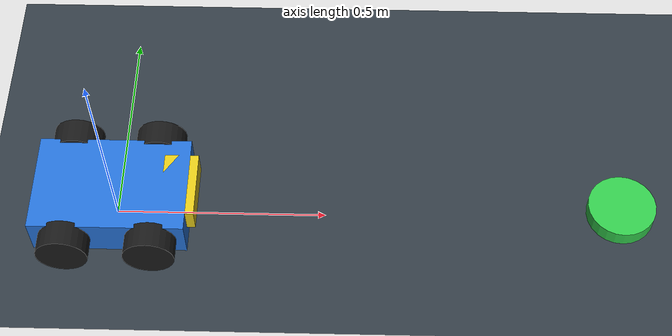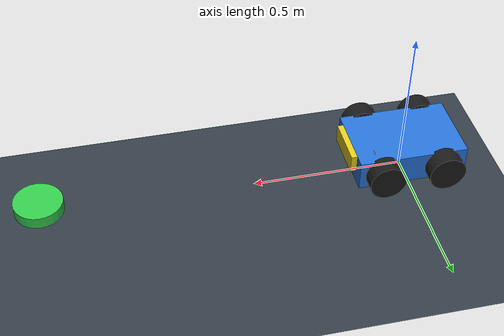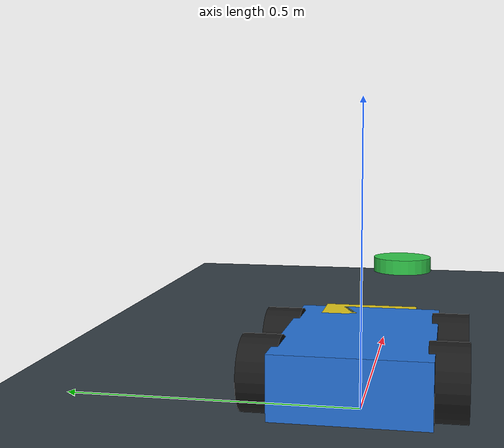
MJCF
<mujoco model="diff_car">
  <compiler angle="radian" coordinate="local" inertiafromgeom="true"/>
  <option timestep="0.002" gravity="0 0 -9.81"/>

  <visual>
    <global offwidth="1280" offheight="720"/>
  </visual>

  <default>
    <joint damping="2" armature="0.01"/>
    <geom friction="1 0.5 0.1"/>
  </default>

  <asset>
    <texture type="skybox" builtin="gradient" rgb1="0.4 0.6 0.8" rgb2="0 0 0" width="256" height="256"/>
    <texture name="texplane" type="2d" builtin="checker" rgb1=".25 .3 .35" rgb2=".15 .18 .2" width="256" height="256"/>
    <material name="matplane" reflectance="0.2" texture="texplane" texrepeat="8 8"/>
  </asset>

  <worldbody>
    <light pos="0 0 3" dir="0 0 -1"/>
    <geom name="floor" type="plane" size="3 3 0.05" material="matplane"/>

    <!-- Goal marker -->
    <body name="goal" pos="1.2 0 0.05">
      <geom type="cylinder" size="0.08 0.02" rgba="0.2 0.8 0.3 1" contype="0" conaffinity="0"/>
    </body>

    <!-- Planar base: x, y, yaw (position-actuated for simple demos) -->
    <body name="chassis" pos="0 0 0.08">
      <joint name="root_x" type="slide" axis="1 0 0" range="-4 4"/>
      <joint name="root_y" type="slide" axis="0 1 0" range="-4 4"/>
            <joint name="root_yaw" type="hinge" axis="0 0 1" range="-6.28 6.28"/>
      <geom type="box" size="0.18 0.12 0.05" rgba="0.15 0.45 0.85 1"/>
      <geom type="box" size="0.04 0.08 0.03" pos="0.16 0 0.02" rgba="0.9 0.8 0.1 1"/>
      <!-- Visual wheels -->
      <geom type="cylinder" size="0.06 0.03" pos="0.1 0.14 0" quat="0.707 0.707 0 0" rgba="0.1 0.1 0.1 1" contype="0" conaffinity="0"/>
      <geom type="cylinder" size="0.06 0.03" pos="0.1 -0.14 0" quat="0.707 0.707 0 0" rgba="0.1 0.1 0.1 1" contype="0" conaffinity="0"/>
      <geom type="cylinder" size="0.06 0.03" pos="-0.1 0.14 0" quat="0.707 0.707 0 0" rgba="0.1 0.1 0.1 1" contype="0" conaffinity="0"/>
      <geom type="cylinder" size="0.06 0.03" pos="-0.1 -0.14 0" quat="0.707 0.707 0 0" rgba="0.1 0.1 0.1 1" contype="0" conaffinity="0"/>
      <camera name="chase" pos="-0.8 0 0.5" xyaxes="0 -1 0 0.4 0 1" fovy="50"/>
    </body>

    <camera name="scene" pos="0 -2.2 1.6" xyaxes="1 0 0 0 0.4 1" fovy="45"/>
  </worldbody>

  <actuator>
    <position name="act_x" joint="root_x" kp="120" ctrlrange="-4 4"/>
    <position name="act_y" joint="root_y" kp="120" ctrlrange="-4 4"/>
    <position name="act_yaw" joint="root_yaw" kp="80" ctrlrange="-6.28 6.28"/>
  </actuator>
</mujoco>
